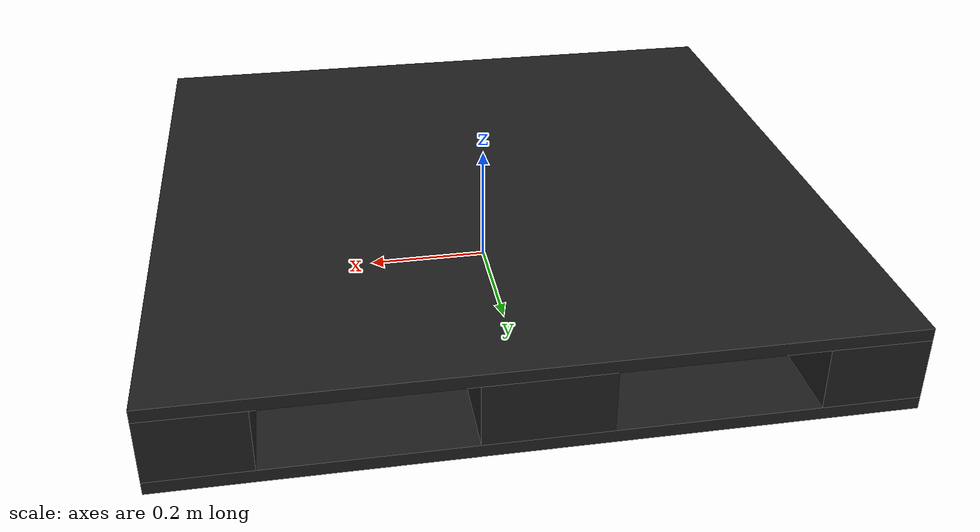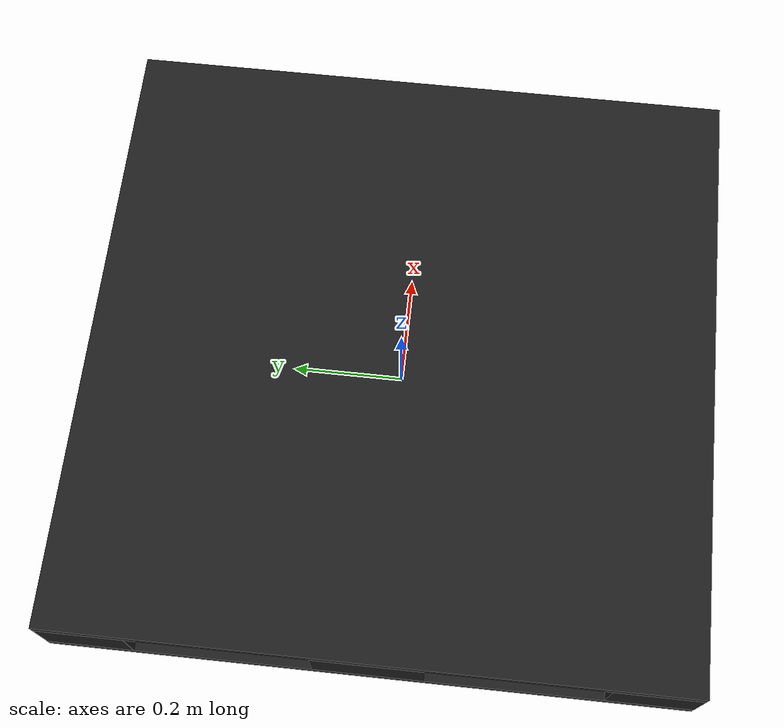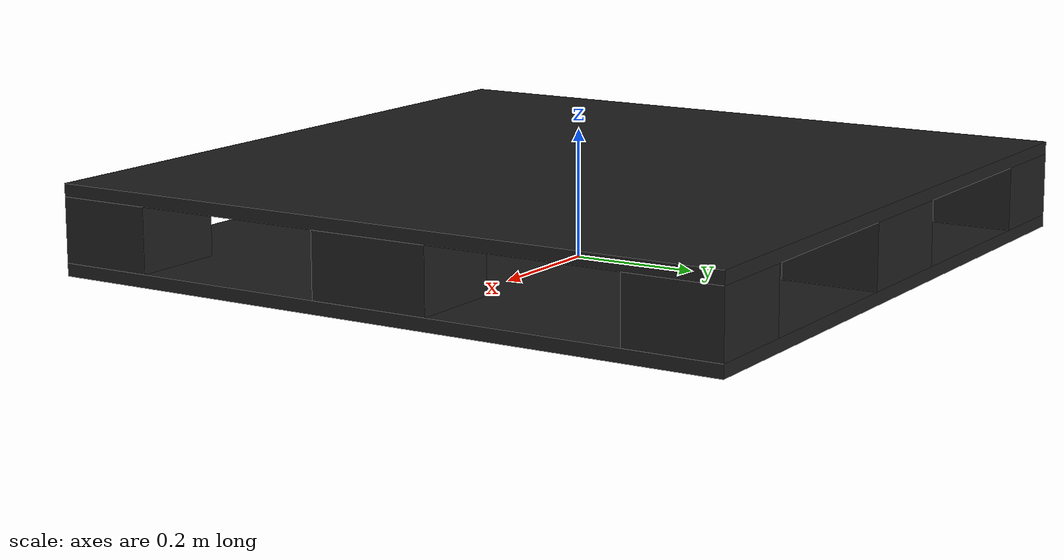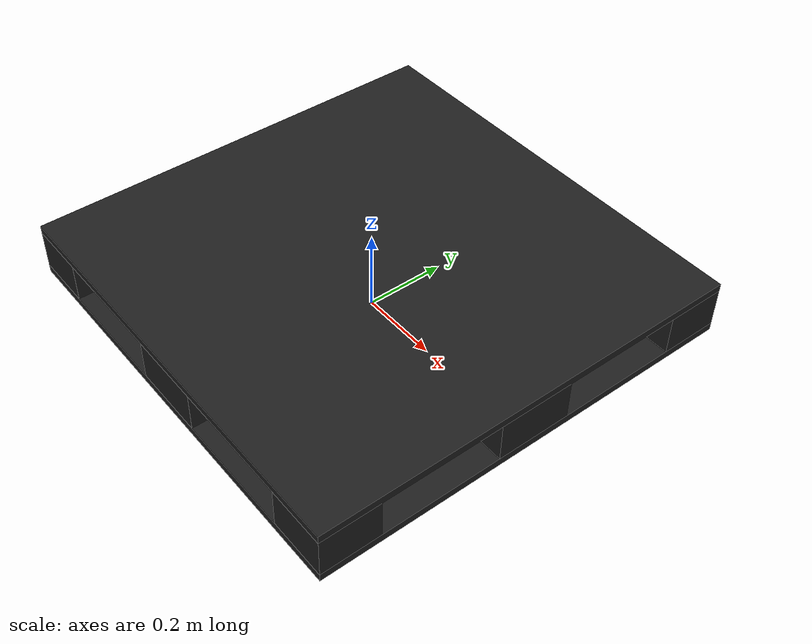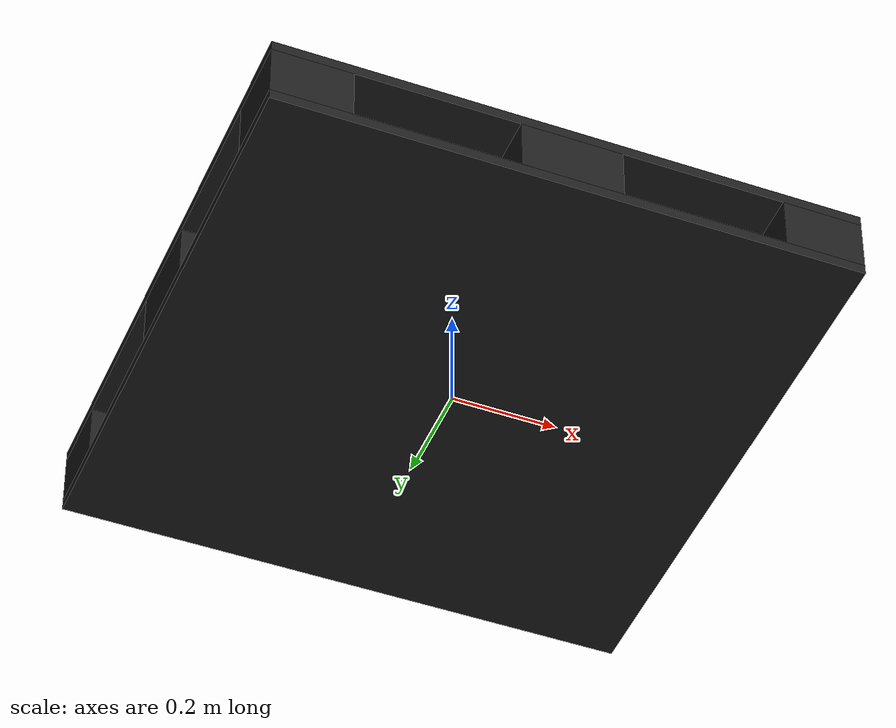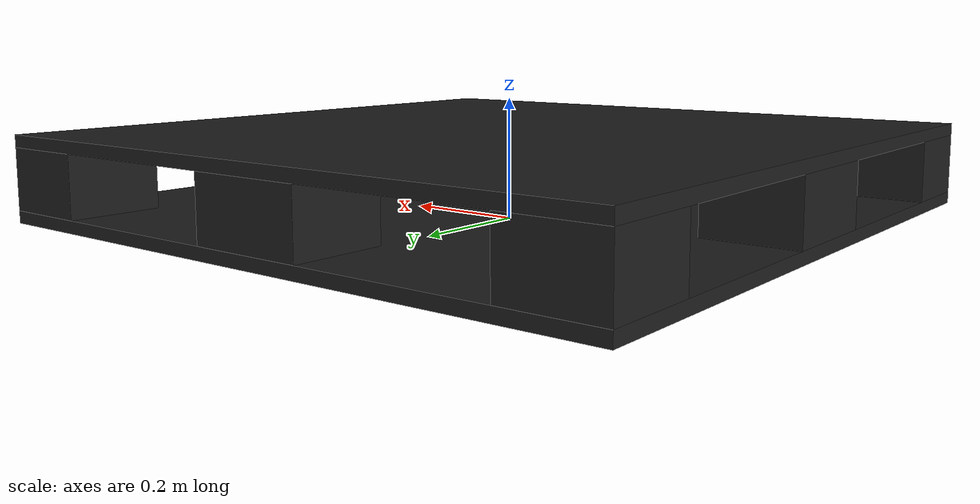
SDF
<?xml version='1.0'?>
<sdf version='1.6'>
  <model name='warehouse_carry_support'>
    <link name='link_0'>
      <pose frame=''>0 0 0.02 0 -0 0</pose>
      <inertial>
        <mass>1</mass>
        <inertia>
          <ixx>0.166667</ixx>
          <ixy>0</ixy>
          <ixz>0</ixz>
          <iyy>0.166667</iyy>
          <iyz>0</iyz>
          <izz>0.166667</izz>
        </inertia>
        <pose frame=''>0 0 0 0 -0 0</pose>
      </inertial>
      <self_collide>0</self_collide>
      <kinematic>0</kinematic>
      <gravity>1</gravity>
      <visual name='visual'>
        <pose frame=''>0 0 0 0 -0 0</pose>
        <geometry>
          <box>
            <size>1.1 1.1 0.02</size>
          </box>
        </geometry>
        <material>
          <lighting>1</lighting>
          <script>
            <uri>file://media/materials/scripts/gazebo.material</uri>
            <name>Gazebo/Black</name>
          </script>
          <ambient>0 0 0 1</ambient>
          <diffuse>0 0 0 1</diffuse>
          <specular>0.1 0.1 0.1 1</specular>
          <emissive>0 0 0 1</emissive>
          <shader type='vertex'>
            <normal_map>__default__</normal_map>
          </shader>
        </material>
        <cast_shadows>1</cast_shadows>
        <transparency>0</transparency>
      </visual>
      <collision name='collision'>
        <laser_retro>0</laser_retro>
        <max_contacts>10</max_contacts>
        <pose frame=''>0 0 0 0 -0 0</pose>
        <geometry>
          <box>
            <size>1.1 1.1 0.02</size>
          </box>
        </geometry>
        <surface>
          <friction>
            <ode>
              <mu>1</mu>
              <mu2>1</mu2>
              <fdir1>0 0 0</fdir1>
              <slip1>0</slip1>
              <slip2>0</slip2>
            </ode>
            <torsional>
              <coefficient>1</coefficient>
              <patch_radius>0</patch_radius>
              <surface_radius>0</surface_radius>
              <use_patch_radius>1</use_patch_radius>
              <ode>
                <slip>0</slip>
              </ode>
            </torsional>
          </friction>
          <bounce>
            <restitution_coefficient>0</restitution_coefficient>
            <threshold>1e+06</threshold>
          </bounce>
          <contact>
            <collide_without_contact>0</collide_without_contact>
            <collide_without_contact_bitmask>1</collide_without_contact_bitmask>
            <collide_bitmask>1</collide_bitmask>
            <ode>
              <soft_cfm>0</soft_cfm>
              <soft_erp>0.2</soft_erp>
              <kp>1e+13</kp>
              <kd>1</kd>
              <max_vel>0.01</max_vel>
              <min_depth>0</min_depth>
            </ode>
            <bullet>
              <split_impulse>1</split_impulse>
              <split_impulse_penetration_threshold>-0.01</split_impulse_penetration_threshold>
              <soft_cfm>0</soft_cfm>
              <soft_erp>0.2</soft_erp>
              <kp>1e+13</kp>
              <kd>1</kd>
            </bullet>
          </contact>
        </surface>
      </collision>
    </link>
    <link name='link_0_clone'>
      <pose frame=''>-0.475 0.475 0.08 0 -0 0</pose>
      <inertial>
        <mass>1</mass>
        <inertia>
          <ixx>0.166667</ixx>
          <ixy>0</ixy>
          <ixz>0</ixz>
          <iyy>0.166667</iyy>
          <iyz>0</iyz>
          <izz>0.166667</izz>
        </inertia>
        <pose frame=''>0 0 0 0 -0 0</pose>
      </inertial>
      <self_collide>0</self_collide>
      <kinematic>0</kinematic>
      <gravity>1</gravity>
      <visual name='visual'>
        <pose frame=''>0 0 0 0 -0 0</pose>
        <geometry>
          <box>
            <size>0.15 0.15 0.1</size>
          </box>
        </geometry>
        <material>
          <lighting>1</lighting>
          <script>
            <uri>file://media/materials/scripts/gazebo.material</uri>
            <name>Gazebo/Black</name>
          </script>
          <ambient>0 0 0 1</ambient>
          <diffuse>0 0 0 1</diffuse>
          <specular>0.1 0.1 0.1 1</specular>
          <emissive>0 0 0 1</emissive>
          <shader type='vertex'>
            <normal_map>__default__</normal_map>
          </shader>
        </material>
        <cast_shadows>1</cast_shadows>
        <transparency>0</transparency>
      </visual>
      <collision name='collision'>
        <laser_retro>0</laser_retro>
        <max_contacts>10</max_contacts>
        <pose frame=''>0 0 0 0 -0 0</pose>
        <geometry>
          <box>
            <size>0.15 0.15 0.1</size>
          </box>
        </geometry>
        <surface>
          <friction>
            <ode>
              <mu>1</mu>
              <mu2>1</mu2>
              <fdir1>0 0 0</fdir1>
              <slip1>0</slip1>
              <slip2>0</slip2>
            </ode>
            <torsional>
              <coefficient>1</coefficient>
              <patch_radius>0</patch_radius>
              <surface_radius>0</surface_radius>
              <use_patch_radius>1</use_patch_radius>
              <ode>
                <slip>0</slip>
              </ode>
            </torsional>
          </friction>
          <bounce>
            <restitution_coefficient>0</restitution_coefficient>
            <threshold>1e+06</threshold>
          </bounce>
          <contact>
            <collide_without_contact>0</collide_without_contact>
            <collide_without_contact_bitmask>1</collide_without_contact_bitmask>
            <collide_bitmask>1</collide_bitmask>
            <ode>
              <soft_cfm>0</soft_cfm>
              <soft_erp>0.2</soft_erp>
              <kp>1e+13</kp>
              <kd>1</kd>
              <max_vel>0.01</max_vel>
              <min_depth>0</min_depth>
            </ode>
            <bullet>
              <split_impulse>1</split_impulse>
              <split_impulse_penetration_threshold>-0.01</split_impulse_penetration_threshold>
              <soft_cfm>0</soft_cfm>
              <soft_erp>0.2</soft_erp>
              <kp>1e+13</kp>
              <kd>1</kd>
            </bullet>
          </contact>
        </surface>
      </collision>
    </link>
    <link name='link_0_clone_0'>
      <pose frame=''>0 0 0.14 0 -0 0</pose>
      <inertial>
        <mass>1</mass>
        <inertia>
          <ixx>0.166667</ixx>
          <ixy>0</ixy>
          <ixz>0</ixz>
          <iyy>0.166667</iyy>
          <iyz>0</iyz>
          <izz>0.166667</izz>
        </inertia>
        <pose frame=''>0 0 0 0 -0 0</pose>
      </inertial>
      <self_collide>0</self_collide>
      <kinematic>0</kinematic>
      <gravity>1</gravity>
      <visual name='visual'>
        <pose frame=''>0 0 0 0 -0 0</pose>
        <geometry>
          <box>
            <size>1.1 1.1 0.02</size>
          </box>
        </geometry>
        <material>
          <lighting>1</lighting>
          <script>
            <uri>file://media/materials/scripts/gazebo.material</uri>
            <name>Gazebo/Black</name>
          </script>
          <ambient>0 0 0 1</ambient>
          <diffuse>0 0 0 1</diffuse>
          <specular>0.1 0.1 0.1 1</specular>
          <emissive>0 0 0 1</emissive>
          <shader type='vertex'>
            <normal_map>__default__</normal_map>
          </shader>
        </material>
        <cast_shadows>1</cast_shadows>
        <transparency>0</transparency>
      </visual>
      <collision name='collision'>
        <laser_retro>0</laser_retro>
        <max_contacts>10</max_contacts>
        <pose frame=''>0 0 0 0 -0 0</pose>
        <geometry>
          <box>
            <size>1.1 1.1 0.02</size>
          </box>
        </geometry>
        <surface>
          <friction>
            <ode>
              <mu>1</mu>
              <mu2>1</mu2>
              <fdir1>0 0 0</fdir1>
              <slip1>0</slip1>
              <slip2>0</slip2>
            </ode>
            <torsional>
              <coefficient>1</coefficient>
              <patch_radius>0</patch_radius>
              <surface_radius>0</surface_radius>
              <use_patch_radius>1</use_patch_radius>
              <ode>
                <slip>0</slip>
              </ode>
            </torsional>
          </friction>
          <bounce>
            <restitution_coefficient>0</restitution_coefficient>
            <threshold>1e+06</threshold>
          </bounce>
          <contact>
            <collide_without_contact>0</collide_without_contact>
            <collide_without_contact_bitmask>1</collide_without_contact_bitmask>
            <collide_bitmask>1</collide_bitmask>
            <ode>
              <soft_cfm>0</soft_cfm>
              <soft_erp>0.2</soft_erp>
              <kp>1e+13</kp>
              <kd>1</kd>
              <max_vel>0.01</max_vel>
              <min_depth>0</min_depth>
            </ode>
            <bullet>
              <split_impulse>1</split_impulse>
              <split_impulse_penetration_threshold>-0.01</split_impulse_penetration_threshold>
              <soft_cfm>0</soft_cfm>
              <soft_erp>0.2</soft_erp>
              <kp>1e+13</kp>
              <kd>1</kd>
            </bullet>
          </contact>
        </surface>
      </collision>
    </link>
    <link name='link_0_clone_clone'>
      <pose frame=''>0.475 0.475 0.08 0 -0 0</pose>
      <inertial>
        <mass>1</mass>
        <inertia>
          <ixx>0.166667</ixx>
          <ixy>0</ixy>
          <ixz>0</ixz>
          <iyy>0.166667</iyy>
          <iyz>0</iyz>
          <izz>0.166667</izz>
        </inertia>
        <pose frame=''>0 0 0 0 -0 0</pose>
      </inertial>
      <self_collide>0</self_collide>
      <kinematic>0</kinematic>
      <visual name='visual'>
        <pose frame=''>0 0 0 0 -0 0</pose>
        <geometry>
          <box>
            <size>0.15 0.15 0.1</size>
          </box>
        </geometry>
        <material>
          <lighting>1</lighting>
          <script>
            <uri>file://media/materials/scripts/gazebo.material</uri>
            <name>Gazebo/Black</name>
          </script>
          <ambient>0 0 0 1</ambient>
          <diffuse>0 0 0 1</diffuse>
          <specular>0.1 0.1 0.1 1</specular>
          <emissive>0 0 0 1</emissive>
          <shader type='vertex'>
            <normal_map>__default__</normal_map>
          </shader>
        </material>
        <cast_shadows>1</cast_shadows>
        <transparency>0</transparency>
      </visual>
      <collision name='collision'>
        <laser_retro>0</laser_retro>
        <max_contacts>10</max_contacts>
        <pose frame=''>0 0 0 0 -0 0</pose>
        <geometry>
          <box>
            <size>0.15 0.15 0.1</size>
          </box>
        </geometry>
        <surface>
          <friction>
            <ode>
              <mu>1</mu>
              <mu2>1</mu2>
              <fdir1>0 0 0</fdir1>
              <slip1>0</slip1>
              <slip2>0</slip2>
            </ode>
            <torsional>
              <coefficient>1</coefficient>
              <patch_radius>0</patch_radius>
              <surface_radius>0</surface_radius>
              <use_patch_radius>1</use_patch_radius>
              <ode>
                <slip>0</slip>
              </ode>
            </torsional>
          </friction>
          <bounce>
            <restitution_coefficient>0</restitution_coefficient>
            <threshold>1e+06</threshold>
          </bounce>
          <contact>
            <collide_without_contact>0</collide_without_contact>
            <collide_without_contact_bitmask>1</collide_without_contact_bitmask>
            <collide_bitmask>1</collide_bitmask>
            <ode>
              <soft_cfm>0</soft_cfm>
              <soft_erp>0.2</soft_erp>
              <kp>1e+13</kp>
              <kd>1</kd>
              <max_vel>0.01</max_vel>
              <min_depth>0</min_depth>
            </ode>
            <bullet>
              <split_impulse>1</split_impulse>
              <split_impulse_penetration_threshold>-0.01</split_impulse_penetration_threshold>
              <soft_cfm>0</soft_cfm>
              <soft_erp>0.2</soft_erp>
              <kp>1e+13</kp>
              <kd>1</kd>
            </bullet>
          </contact>
        </surface>
      </collision>
    </link>
    <link name='link_0_clone_clone_0'>
      <pose frame=''>0.475 -0.475 0.08 0 -0 0</pose>
      <inertial>
        <mass>1</mass>
        <inertia>
          <ixx>0.166667</ixx>
          <ixy>0</ixy>
          <ixz>0</ixz>
          <iyy>0.166667</iyy>
          <iyz>0</iyz>
          <izz>0.166667</izz>
        </inertia>
        <pose frame=''>0 0 0 0 -0 0</pose>
      </inertial>
      <self_collide>0</self_collide>
      <kinematic>0</kinematic>
      <visual name='visual'>
        <pose frame=''>0 0 0 0 -0 0</pose>
        <geometry>
          <box>
            <size>0.15 0.15 0.1</size>
          </box>
        </geometry>
        <material>
          <lighting>1</lighting>
          <script>
            <uri>file://media/materials/scripts/gazebo.material</uri>
            <name>Gazebo/Black</name>
          </script>
          <ambient>0 0 0 1</ambient>
          <diffuse>0 0 0 1</diffuse>
          <specular>0.1 0.1 0.1 1</specular>
          <emissive>0 0 0 1</emissive>
          <shader type='vertex'>
            <normal_map>__default__</normal_map>
          </shader>
        </material>
        <cast_shadows>1</cast_shadows>
        <transparency>0</transparency>
      </visual>
      <collision name='collision'>
        <laser_retro>0</laser_retro>
        <max_contacts>10</max_contacts>
        <pose frame=''>0 0 0 0 -0 0</pose>
        <geometry>
          <box>
            <size>0.15 0.15 0.1</size>
          </box>
        </geometry>
        <surface>
          <friction>
            <ode>
              <mu>1</mu>
              <mu2>1</mu2>
              <fdir1>0 0 0</fdir1>
              <slip1>0</slip1>
              <slip2>0</slip2>
            </ode>
            <torsional>
              <coefficient>1</coefficient>
              <patch_radius>0</patch_radius>
              <surface_radius>0</surface_radius>
              <use_patch_radius>1</use_patch_radius>
              <ode>
                <slip>0</slip>
              </ode>
            </torsional>
          </friction>
          <bounce>
            <restitution_coefficient>0</restitution_coefficient>
            <threshold>1e+06</threshold>
          </bounce>
          <contact>
            <collide_without_contact>0</collide_without_contact>
            <collide_without_contact_bitmask>1</collide_without_contact_bitmask>
            <collide_bitmask>1</collide_bitmask>
            <ode>
              <soft_cfm>0</soft_cfm>
              <soft_erp>0.2</soft_erp>
              <kp>1e+13</kp>
              <kd>1</kd>
              <max_vel>0.01</max_vel>
              <min_depth>0</min_depth>
            </ode>
            <bullet>
              <split_impulse>1</split_impulse>
              <split_impulse_penetration_threshold>-0.01</split_impulse_penetration_threshold>
              <soft_cfm>0</soft_cfm>
              <soft_erp>0.2</soft_erp>
              <kp>1e+13</kp>
              <kd>1</kd>
            </bullet>
          </contact>
        </surface>
      </collision>
    </link>
    <link name='link_0_clone_clone_1'>
      <pose frame=''>-0.475 -0.475 0.08 0 -0 0</pose>
      <inertial>
        <mass>1</mass>
        <inertia>
          <ixx>0.166667</ixx>
          <ixy>0</ixy>
          <ixz>0</ixz>
          <iyy>0.166667</iyy>
          <iyz>0</iyz>
          <izz>0.166667</izz>
        </inertia>
        <pose frame=''>0 0 0 0 -0 0</pose>
      </inertial>
      <self_collide>0</self_collide>
      <kinematic>0</kinematic>
      <visual name='visual'>
        <pose frame=''>0 0 0 0 -0 0</pose>
        <geometry>
          <box>
            <size>0.15 0.15 0.1</size>
          </box>
        </geometry>
        <material>
          <lighting>1</lighting>
          <script>
            <uri>file://media/materials/scripts/gazebo.material</uri>
            <name>Gazebo/Black</name>
          </script>
          <ambient>0 0 0 1</ambient>
          <diffuse>0 0 0 1</diffuse>
          <specular>0.1 0.1 0.1 1</specular>
          <emissive>0 0 0 1</emissive>
          <shader type='vertex'>
            <normal_map>__default__</normal_map>
          </shader>
        </material>
        <cast_shadows>1</cast_shadows>
        <transparency>0</transparency>
      </visual>
      <collision name='collision'>
        <laser_retro>0</laser_retro>
        <max_contacts>10</max_contacts>
        <pose frame=''>0 0 0 0 -0 0</pose>
        <geometry>
          <box>
            <size>0.15 0.15 0.1</size>
          </box>
        </geometry>
        <surface>
          <friction>
            <ode>
              <mu>1</mu>
              <mu2>1</mu2>
              <fdir1>0 0 0</fdir1>
              <slip1>0</slip1>
              <slip2>0</slip2>
            </ode>
            <torsional>
              <coefficient>1</coefficient>
              <patch_radius>0</patch_radius>
              <surface_radius>0</surface_radius>
              <use_patch_radius>1</use_patch_radius>
              <ode>
                <slip>0</slip>
              </ode>
            </torsional>
          </friction>
          <bounce>
            <restitution_coefficient>0</restitution_coefficient>
            <threshold>1e+06</threshold>
          </bounce>
          <contact>
            <collide_without_contact>0</collide_without_contact>
            <collide_without_contact_bitmask>1</collide_without_contact_bitmask>
            <collide_bitmask>1</collide_bitmask>
            <ode>
              <soft_cfm>0</soft_cfm>
              <soft_erp>0.2</soft_erp>
              <kp>1e+13</kp>
              <kd>1</kd>
              <max_vel>0.01</max_vel>
              <min_depth>0</min_depth>
            </ode>
            <bullet>
              <split_impulse>1</split_impulse>
              <split_impulse_penetration_threshold>-0.01</split_impulse_penetration_threshold>
              <soft_cfm>0</soft_cfm>
              <soft_erp>0.2</soft_erp>
              <kp>1e+13</kp>
              <kd>1</kd>
            </bullet>
          </contact>
        </surface>
      </collision>
    </link>
    <link name='link_0_clone_clone_1_clone'>
      <pose frame=''>0 -0.475 0.08 0 -0 0</pose>
      <inertial>
        <mass>1</mass>
        <inertia>
          <ixx>0.166667</ixx>
          <ixy>0</ixy>
          <ixz>0</ixz>
          <iyy>0.166667</iyy>
          <iyz>0</iyz>
          <izz>0.166667</izz>
        </inertia>
        <pose frame=''>0 0 0 0 -0 0</pose>
      </inertial>
      <self_collide>0</self_collide>
      <kinematic>0</kinematic>
      <gravity>1</gravity>
      <visual name='visual'>
        <pose frame=''>0 0 0 0 -0 0</pose>
        <geometry>
          <box>
            <size>0.19 0.15 0.1</size>
          </box>
        </geometry>
        <material>
          <lighting>1</lighting>
          <script>
            <uri>file://media/materials/scripts/gazebo.material</uri>
            <name>Gazebo/Black</name>
          </script>
          <ambient>0 0 0 1</ambient>
          <diffuse>0 0 0 1</diffuse>
          <specular>0.1 0.1 0.1 1</specular>
          <emissive>0 0 0 1</emissive>
          <shader type='vertex'>
            <normal_map>__default__</normal_map>
          </shader>
        </material>
        <cast_shadows>1</cast_shadows>
        <transparency>0</transparency>
      </visual>
      <collision name='collision'>
        <laser_retro>0</laser_retro>
        <max_contacts>10</max_contacts>
        <pose frame=''>0 0 0 0 -0 0</pose>
        <geometry>
          <box>
            <size>0.19 0.15 0.1</size>
          </box>
        </geometry>
        <surface>
          <friction>
            <ode>
              <mu>1</mu>
              <mu2>1</mu2>
              <fdir1>0 0 0</fdir1>
              <slip1>0</slip1>
              <slip2>0</slip2>
            </ode>
            <torsional>
              <coefficient>1</coefficient>
              <patch_radius>0</patch_radius>
              <surface_radius>0</surface_radius>
              <use_patch_radius>1</use_patch_radius>
              <ode>
                <slip>0</slip>
              </ode>
            </torsional>
          </friction>
          <bounce>
            <restitution_coefficient>0</restitution_coefficient>
            <threshold>1e+06</threshold>
          </bounce>
          <contact>
            <collide_without_contact>0</collide_without_contact>
            <collide_without_contact_bitmask>1</collide_without_contact_bitmask>
            <collide_bitmask>1</collide_bitmask>
            <ode>
              <soft_cfm>0</soft_cfm>
              <soft_erp>0.2</soft_erp>
              <kp>1e+13</kp>
              <kd>1</kd>
              <max_vel>0.01</max_vel>
              <min_depth>0</min_depth>
            </ode>
            <bullet>
              <split_impulse>1</split_impulse>
              <split_impulse_penetration_threshold>-0.01</split_impulse_penetration_threshold>
              <soft_cfm>0</soft_cfm>
              <soft_erp>0.2</soft_erp>
              <kp>1e+13</kp>
              <kd>1</kd>
            </bullet>
          </contact>
        </surface>
      </collision>
    </link>
    <link name='link_0_clone_clone_1_clone_clone'>
      <pose frame=''>0 0.475 0.08 0 -0 0</pose>
      <inertial>
        <mass>1</mass>
        <inertia>
          <ixx>0.166667</ixx>
          <ixy>0</ixy>
          <ixz>0</ixz>
          <iyy>0.166667</iyy>
          <iyz>0</iyz>
          <izz>0.166667</izz>
        </inertia>
        <pose frame=''>0 0 0 0 -0 0</pose>
      </inertial>
      <self_collide>0</self_collide>
      <kinematic>0</kinematic>
      <visual name='visual'>
        <pose frame=''>0 0 0 0 -0 0</pose>
        <geometry>
          <box>
            <size>0.19 0.15 0.1</size>
          </box>
        </geometry>
        <material>
          <lighting>1</lighting>
          <script>
            <uri>file://media/materials/scripts/gazebo.material</uri>
            <name>Gazebo/Black</name>
          </script>
          <ambient>0 0 0 1</ambient>
          <diffuse>0 0 0 1</diffuse>
          <specular>0.1 0.1 0.1 1</specular>
          <emissive>0 0 0 1</emissive>
          <shader type='vertex'>
            <normal_map>__default__</normal_map>
          </shader>
        </material>
        <cast_shadows>1</cast_shadows>
        <transparency>0</transparency>
      </visual>
      <collision name='collision'>
        <laser_retro>0</laser_retro>
        <max_contacts>10</max_contacts>
        <pose frame=''>0 0 0 0 -0 0</pose>
        <geometry>
          <box>
            <size>0.19 0.15 0.1</size>
          </box>
        </geometry>
        <surface>
          <friction>
            <ode>
              <mu>1</mu>
              <mu2>1</mu2>
              <fdir1>0 0 0</fdir1>
              <slip1>0</slip1>
              <slip2>0</slip2>
            </ode>
            <torsional>
              <coefficient>1</coefficient>
              <patch_radius>0</patch_radius>
              <surface_radius>0</surface_radius>
              <use_patch_radius>1</use_patch_radius>
              <ode>
                <slip>0</slip>
              </ode>
            </torsional>
          </friction>
          <bounce>
            <restitution_coefficient>0</restitution_coefficient>
            <threshold>1e+06</threshold>
          </bounce>
          <contact>
            <collide_without_contact>0</collide_without_contact>
            <collide_without_contact_bitmask>1</collide_without_contact_bitmask>
            <collide_bitmask>1</collide_bitmask>
            <ode>
              <soft_cfm>0</soft_cfm>
              <soft_erp>0.2</soft_erp>
              <kp>1e+13</kp>
              <kd>1</kd>
              <max_vel>0.01</max_vel>
              <min_depth>0</min_depth>
            </ode>
            <bullet>
              <split_impulse>1</split_impulse>
              <split_impulse_penetration_threshold>-0.01</split_impulse_penetration_threshold>
              <soft_cfm>0</soft_cfm>
              <soft_erp>0.2</soft_erp>
              <kp>1e+13</kp>
              <kd>1</kd>
            </bullet>
          </contact>
        </surface>
      </collision>
    </link>
    <link name='link_0_clone_clone_clone'>
      <pose frame=''>0.475 0 0.08 0 -0 0</pose>
      <inertial>
        <mass>1</mass>
        <inertia>
          <ixx>0.166667</ixx>
          <ixy>0</ixy>
          <ixz>0</ixz>
          <iyy>0.166667</iyy>
          <iyz>0</iyz>
          <izz>0.166667</izz>
        </inertia>
        <pose frame=''>0 0 0 0 -0 0</pose>
      </inertial>
      <self_collide>0</self_collide>
      <kinematic>0</kinematic>
      <gravity>1</gravity>
      <visual name='visual'>
        <pose frame=''>0 0 0 0 -0 0</pose>
        <geometry>
          <box>
            <size>0.15 0.19 0.1</size>
          </box>
        </geometry>
        <material>
          <lighting>1</lighting>
          <script>
            <uri>file://media/materials/scripts/gazebo.material</uri>
            <name>Gazebo/Black</name>
          </script>
          <ambient>0 0 0 1</ambient>
          <diffuse>0 0 0 1</diffuse>
          <specular>0.1 0.1 0.1 1</specular>
          <emissive>0 0 0 1</emissive>
          <shader type='vertex'>
            <normal_map>__default__</normal_map>
          </shader>
        </material>
        <cast_shadows>1</cast_shadows>
        <transparency>0</transparency>
      </visual>
      <collision name='collision'>
        <laser_retro>0</laser_retro>
        <max_contacts>10</max_contacts>
        <pose frame=''>0 0 0 0 -0 0</pose>
        <geometry>
          <box>
            <size>0.15 0.19 0.1</size>
          </box>
        </geometry>
        <surface>
          <friction>
            <ode>
              <mu>1</mu>
              <mu2>1</mu2>
              <fdir1>0 0 0</fdir1>
              <slip1>0</slip1>
              <slip2>0</slip2>
            </ode>
            <torsional>
              <coefficient>1</coefficient>
              <patch_radius>0</patch_radius>
              <surface_radius>0</surface_radius>
              <use_patch_radius>1</use_patch_radius>
              <ode>
                <slip>0</slip>
              </ode>
            </torsional>
          </friction>
          <bounce>
            <restitution_coefficient>0</restitution_coefficient>
            <threshold>1e+06</threshold>
          </bounce>
          <contact>
            <collide_without_contact>0</collide_without_contact>
            <collide_without_contact_bitmask>1</collide_without_contact_bitmask>
            <collide_bitmask>1</collide_bitmask>
            <ode>
              <soft_cfm>0</soft_cfm>
              <soft_erp>0.2</soft_erp>
              <kp>1e+13</kp>
              <kd>1</kd>
              <max_vel>0.01</max_vel>
              <min_depth>0</min_depth>
            </ode>
            <bullet>
              <split_impulse>1</split_impulse>
              <split_impulse_penetration_threshold>-0.01</split_impulse_penetration_threshold>
              <soft_cfm>0</soft_cfm>
              <soft_erp>0.2</soft_erp>
              <kp>1e+13</kp>
              <kd>1</kd>
            </bullet>
          </contact>
        </surface>
      </collision>
    </link>
    <link name='link_0_clone_clone_clone_clone'>
      <pose frame=''>-0.475 0 0.08 0 -0 0</pose>
      <inertial>
        <mass>1</mass>
        <inertia>
          <ixx>0.166667</ixx>
          <ixy>0</ixy>
          <ixz>0</ixz>
          <iyy>0.166667</iyy>
          <iyz>0</iyz>
          <izz>0.166667</izz>
        </inertia>
        <pose frame=''>0 0 0 0 -0 0</pose>
      </inertial>
      <self_collide>0</self_collide>
      <kinematic>0</kinematic>
      <visual name='visual'>
        <pose frame=''>0 0 0 0 -0 0</pose>
        <geometry>
          <box>
            <size>0.15 0.19 0.1</size>
          </box>
        </geometry>
        <material>
          <lighting>1</lighting>
          <script>
            <uri>file://media/materials/scripts/gazebo.material</uri>
            <name>Gazebo/Black</name>
          </script>
          <ambient>0 0 0 1</ambient>
          <diffuse>0 0 0 1</diffuse>
          <specular>0.1 0.1 0.1 1</specular>
          <emissive>0 0 0 1</emissive>
          <shader type='vertex'>
            <normal_map>__default__</normal_map>
          </shader>
        </material>
        <cast_shadows>1</cast_shadows>
        <transparency>0</transparency>
      </visual>
      <collision name='collision'>
        <laser_retro>0</laser_retro>
        <max_contacts>10</max_contacts>
        <pose frame=''>0 0 0 0 -0 0</pose>
        <geometry>
          <box>
            <size>0.15 0.19 0.1</size>
          </box>
        </geometry>
        <surface>
          <friction>
            <ode>
              <mu>1</mu>
              <mu2>1</mu2>
              <fdir1>0 0 0</fdir1>
              <slip1>0</slip1>
              <slip2>0</slip2>
            </ode>
            <torsional>
              <coefficient>1</coefficient>
              <patch_radius>0</patch_radius>
              <surface_radius>0</surface_radius>
              <use_patch_radius>1</use_patch_radius>
              <ode>
                <slip>0</slip>
              </ode>
            </torsional>
          </friction>
          <bounce>
            <restitution_coefficient>0</restitution_coefficient>
            <threshold>1e+06</threshold>
          </bounce>
          <contact>
            <collide_without_contact>0</collide_without_contact>
            <collide_without_contact_bitmask>1</collide_without_contact_bitmask>
            <collide_bitmask>1</collide_bitmask>
            <ode>
              <soft_cfm>0</soft_cfm>
              <soft_erp>0.2</soft_erp>
              <kp>1e+13</kp>
              <kd>1</kd>
              <max_vel>0.01</max_vel>
              <min_depth>0</min_depth>
            </ode>
            <bullet>
              <split_impulse>1</split_impulse>
              <split_impulse_penetration_threshold>-0.01</split_impulse_penetration_threshold>
              <soft_cfm>0</soft_cfm>
              <soft_erp>0.2</soft_erp>
              <kp>1e+13</kp>
              <kd>1</kd>
            </bullet>
          </contact>
        </surface>
      </collision>
    </link>
    <joint name='link_0_JOINT_0' type='fixed'>
      <parent>link_0</parent>
      <child>link_0_clone</child>
      <pose frame=''>0 0 0 0 -0 0</pose>
      <physics>
        <ode>
          <limit>
            <cfm>0</cfm>
            <erp>0.2</erp>
          </limit>
          <suspension>
            <cfm>0</cfm>
            <erp>0.2</erp>
          </suspension>
        </ode>
      </physics>
    </joint>
    <joint name='link_0_JOINT_1' type='fixed'>
      <parent>link_0</parent>
      <child>link_0_clone_clone</child>
      <pose frame=''>0 0 0 0 -0 0</pose>
      <physics>
        <ode>
          <limit>
            <cfm>0</cfm>
            <erp>0.2</erp>
          </limit>
          <suspension>
            <cfm>0</cfm>
            <erp>0.2</erp>
          </suspension>
        </ode>
      </physics>
    </joint>
    <joint name='link_0_JOINT_2' type='fixed'>
      <parent>link_0</parent>
      <child>link_0_clone_clone_0</child>
      <pose frame=''>0 0 0 0 -0 0</pose>
      <physics>
        <ode>
          <limit>
            <cfm>0</cfm>
            <erp>0.2</erp>
          </limit>
          <suspension>
            <cfm>0</cfm>
            <erp>0.2</erp>
          </suspension>
        </ode>
      </physics>
    </joint>
    <joint name='link_0_JOINT_3' type='fixed'>
      <parent>link_0</parent>
      <child>link_0_clone_clone_1</child>
      <pose frame=''>0 0 0 0 -0 0</pose>
      <physics>
        <ode>
          <limit>
            <cfm>0</cfm>
            <erp>0.2</erp>
          </limit>
          <suspension>
            <cfm>0</cfm>
            <erp>0.2</erp>
          </suspension>
        </ode>
      </physics>
    </joint>
    <joint name='link_0_JOINT_4' type='fixed'>
      <parent>link_0</parent>
      <child>link_0_clone_clone_1_clone_clone</child>
      <pose frame=''>0 0 0 0 -0 0</pose>
      <physics>
        <ode>
          <limit>
            <cfm>0</cfm>
            <erp>0.2</erp>
          </limit>
          <suspension>
            <cfm>0</cfm>
            <erp>0.2</erp>
          </suspension>
        </ode>
      </physics>
    </joint>
    <joint name='link_0_JOINT_5' type='fixed'>
      <parent>link_0</parent>
      <child>link_0_clone_clone_clone_clone</child>
      <pose frame=''>0 0 0 0 -0 0</pose>
      <physics>
        <ode>
          <limit>
            <cfm>0</cfm>
            <erp>0.2</erp>
          </limit>
          <suspension>
            <cfm>0</cfm>
            <erp>0.2</erp>
          </suspension>
        </ode>
      </physics>
    </joint>
    <joint name='link_0_JOINT_6' type='fixed'>
      <parent>link_0</parent>
      <child>link_0_clone_clone_1_clone</child>
      <pose frame=''>0 0 0 0 -0 0</pose>
      <physics>
        <ode>
          <limit>
            <cfm>0</cfm>
            <erp>0.2</erp>
          </limit>
          <suspension>
            <cfm>0</cfm>
            <erp>0.2</erp>
          </suspension>
        </ode>
      </physics>
    </joint>
    <joint name='link_0_JOINT_7' type='fixed'>
      <parent>link_0</parent>
      <child>link_0_clone_clone_clone</child>
      <pose frame=''>0 0 0 0 -0 0</pose>
      <physics>
        <ode>
          <limit>
            <cfm>0</cfm>
            <erp>0.2</erp>
          </limit>
          <suspension>
            <cfm>0</cfm>
            <erp>0.2</erp>
          </suspension>
        </ode>
      </physics>
    </joint>
    <joint name='link_0_clone_0_JOINT_10' type='fixed'>
      <parent>link_0_clone_0</parent>
      <child>link_0_clone_clone</child>
      <pose frame=''>0 0 0 0 -0 0</pose>
      <physics>
        <ode>
          <limit>
            <cfm>0</cfm>
            <erp>0.2</erp>
          </limit>
          <suspension>
            <cfm>0</cfm>
            <erp>0.2</erp>
          </suspension>
        </ode>
      </physics>
    </joint>
    <joint name='link_0_clone_0_JOINT_11' type='fixed'>
      <parent>link_0_clone_0</parent>
      <child>link_0_clone_clone_1_clone_clone</child>
      <pose frame=''>0 0 0 0 -0 0</pose>
      <physics>
        <ode>
          <limit>
            <cfm>0</cfm>
            <erp>0.2</erp>
          </limit>
          <suspension>
            <cfm>0</cfm>
            <erp>0.2</erp>
          </suspension>
        </ode>
      </physics>
    </joint>
    <joint name='link_0_clone_0_JOINT_12' type='fixed'>
      <parent>link_0_clone_0</parent>
      <child>link_0_clone</child>
      <pose frame=''>0 0 0 0 -0 0</pose>
      <physics>
        <ode>
          <limit>
            <cfm>0</cfm>
            <erp>0.2</erp>
          </limit>
          <suspension>
            <cfm>0</cfm>
            <erp>0.2</erp>
          </suspension>
        </ode>
      </physics>
    </joint>
    <joint name='link_0_clone_0_JOINT_13' type='fixed'>
      <parent>link_0_clone_0</parent>
      <child>link_0_clone_clone_1_clone</child>
      <pose frame=''>0 0 0 0 -0 0</pose>
      <physics>
        <ode>
          <limit>
            <cfm>0</cfm>
            <erp>0.2</erp>
          </limit>
          <suspension>
            <cfm>0</cfm>
            <erp>0.2</erp>
          </suspension>
        </ode>
      </physics>
    </joint>
    <joint name='link_0_clone_0_JOINT_14' type='fixed'>
      <parent>link_0_clone_0</parent>
      <child>link_0_clone_clone_1</child>
      <pose frame=''>0 0 0 0 -0 0</pose>
      <physics>
        <ode>
          <limit>
            <cfm>0</cfm>
            <erp>0.2</erp>
          </limit>
          <suspension>
            <cfm>0</cfm>
            <erp>0.2</erp>
          </suspension>
        </ode>
      </physics>
    </joint>
    <joint name='link_0_clone_0_JOINT_15' type='fixed'>
      <parent>link_0_clone_0</parent>
      <child>link_0_clone_clone_clone_clone</child>
      <pose frame=''>0 0 0 0 -0 0</pose>
      <physics>
        <ode>
          <limit>
            <cfm>0</cfm>
            <erp>0.2</erp>
          </limit>
          <suspension>
            <cfm>0</cfm>
            <erp>0.2</erp>
          </suspension>
        </ode>
      </physics>
    </joint>
    <joint name='link_0_clone_0_JOINT_8' type='fixed'>
      <parent>link_0_clone_0</parent>
      <child>link_0_clone_clone_0</child>
      <pose frame=''>0 0 0 0 -0 0</pose>
      <physics>
        <ode>
          <limit>
            <cfm>0</cfm>
            <erp>0.2</erp>
          </limit>
          <suspension>
            <cfm>0</cfm>
            <erp>0.2</erp>
          </suspension>
        </ode>
      </physics>
    </joint>
    <joint name='link_0_clone_0_JOINT_9' type='fixed'>
      <parent>link_0_clone_0</parent>
      <child>link_0_clone_clone_clone</child>
      <pose frame=''>0 0 0 0 -0 0</pose>
      <physics>
        <ode>
          <limit>
            <cfm>0</cfm>
            <erp>0.2</erp>
          </limit>
          <suspension>
            <cfm>0</cfm>
            <erp>0.2</erp>
          </suspension>
        </ode>
      </physics>
    </joint>
    <static>0</static>
    <allow_auto_disable>1</allow_auto_disable>
  </model>
</sdf>
